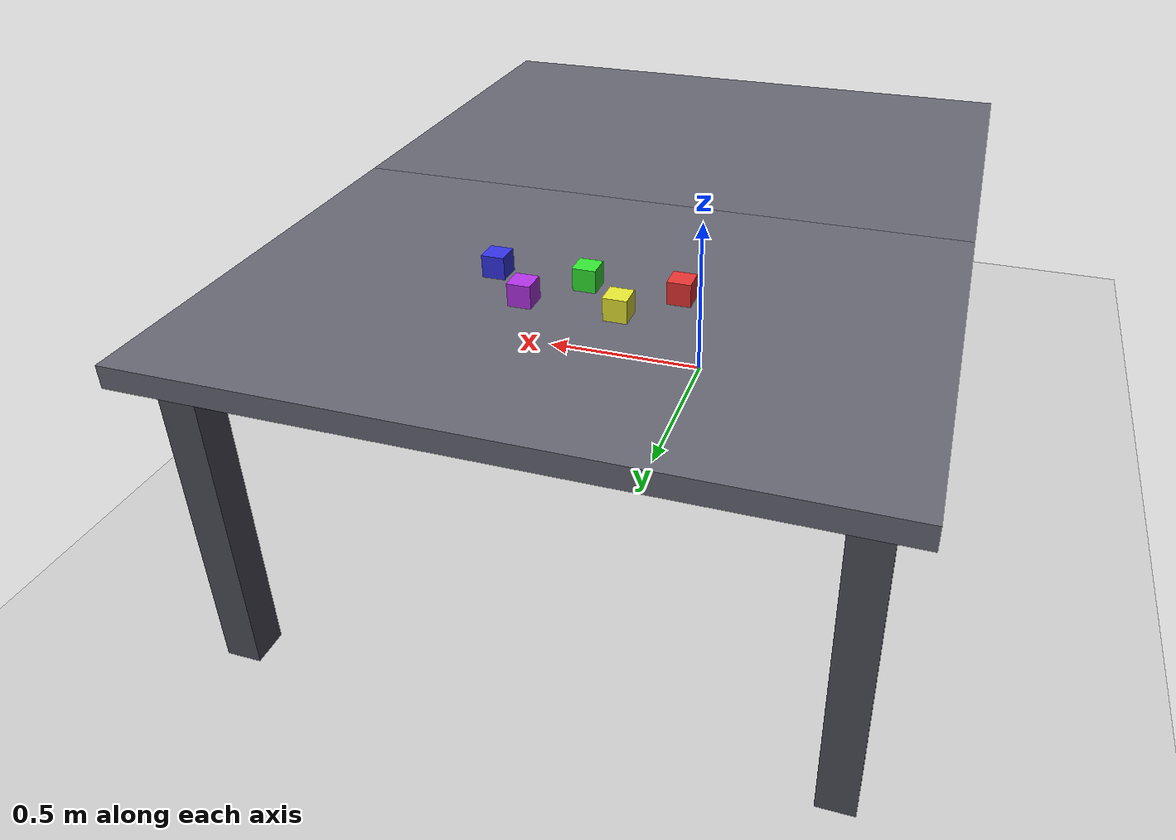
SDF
<?xml version="1.0" ?>
<sdf version="1.9">
  <world name="table_world">
    <physics name="1ms" type="ignored">
      <max_step_size>0.001</max_step_size>
      <real_time_factor>1.0</real_time_factor>
    </physics>

    <plugin filename="gz-sim-physics-system" name="gz::sim::systems::Physics"/>
    <plugin filename="gz-sim-user-commands-system" name="gz::sim::systems::UserCommands"/>
    <plugin filename="gz-sim-scene-broadcaster-system" name="gz::sim::systems::SceneBroadcaster"/>
    <plugin filename="gz-sim-sensors-system" name="gz::sim::systems::Sensors">
      <render_engine>ogre2</render_engine>
    </plugin>
    <plugin filename="gz-sim-contact-system" name="gz::sim::systems::Contact"/>

    <light type="directional" name="sun">
      <cast_shadows>true</cast_shadows>
      <pose>0 0 10 0 0 0</pose>
      <diffuse>0.8 0.8 0.8 1</diffuse>
      <specular>0.2 0.2 0.2 1</specular>
      <attenuation>
        <range>1000</range>
        <constant>0.9</constant>
        <linear>0.01</linear>
        <quadratic>0.001</quadratic>
      </attenuation>
      <direction>-0.5 0.1 -0.9</direction>
    </light>

    <light type="point" name="ambient_light">
      <pose>0 0 5 0 0 0</pose>
      <diffuse>0.5 0.5 0.5 1</diffuse>
      <specular>0.1 0.1 0.1 1</specular>
      <attenuation>
        <range>100</range>
        <constant>0.5</constant>
        <linear>0.01</linear>
        <quadratic>0.001</quadratic>
      </attenuation>
    </light>

    <model name="ground_plane">
      <static>true</static>
      <link name="link">
        <collision name="collision">
          <geometry>
            <plane>
              <normal>0 0 1</normal>
              <size>100 100</size>
            </plane>
          </geometry>
        </collision>
        <visual name="visual">
          <geometry>
            <plane>
              <normal>0 0 1</normal>
              <size>100 100</size>
            </plane>
          </geometry>
          <material>
            <ambient>0.8 0.8 0.8 1</ambient>
            <diffuse>0.8 0.8 0.8 1</diffuse>
            <specular>0.8 0.8 0.8 1</specular>
          </material>
        </visual>
      </link>
    </model>

    <!-- Industrial Metal Table -->
    <model name="industrial_table">
      <static>true</static>
      <pose>0 0 0 0 0 0</pose>

      <!-- Table Top -->
      <link name="table_top">
        <pose>0 0 0.75 0 0 0</pose>
        <collision name="table_top_collision">
          <geometry>
            <box>
              <size>1.5 1.0 0.05</size>
            </box>
          </geometry>
        </collision>
        <visual name="table_top_visual">
          <geometry>
            <box>
              <size>1.5 1.0 0.05</size>
            </box>
          </geometry>
          <material>
            <ambient>0.3 0.3 0.35 1</ambient>
            <diffuse>0.4 0.4 0.45 1</diffuse>
            <specular>0.6 0.6 0.6 1</specular>
            <pbr>
              <metal>
                <metalness>0.8</metalness>
                <roughness>0.3</roughness>
              </metal>
            </pbr>
          </material>
        </visual>
        <inertial>
          <mass>50</mass>
          <inertia>
            <ixx>4.27</ixx>
            <iyy>9.48</iyy>
            <izz>13.54</izz>
            <ixy>0</ixy>
            <ixz>0</ixz>
            <iyz>0</iyz>
          </inertia>
        </inertial>
      </link>

      <!-- Table Leg 1 (Front Left) -->
      <link name="leg_1">
        <pose>-0.65 -0.4 0.3625 0 0 0</pose>
        <collision name="leg_1_collision">
          <geometry>
            <box>
              <size>0.08 0.08 0.725</size>
            </box>
          </geometry>
        </collision>
        <visual name="leg_1_visual">
          <geometry>
            <box>
              <size>0.08 0.08 0.725</size>
            </box>
          </geometry>
          <material>
            <ambient>0.2 0.2 0.25 1</ambient>
            <diffuse>0.3 0.3 0.35 1</diffuse>
            <specular>0.5 0.5 0.5 1</specular>
            <pbr>
              <metal>
                <metalness>0.9</metalness>
                <roughness>0.2</roughness>
              </metal>
            </pbr>
          </material>
        </visual>
      </link>

      <!-- Table Leg 2 (Front Right) -->
      <link name="leg_2">
        <pose>0.65 -0.4 0.3625 0 0 0</pose>
        <collision name="leg_2_collision">
          <geometry>
            <box>
              <size>0.08 0.08 0.725</size>
            </box>
          </geometry>
        </collision>
        <visual name="leg_2_visual">
          <geometry>
            <box>
              <size>0.08 0.08 0.725</size>
            </box>
          </geometry>
          <material>
            <ambient>0.2 0.2 0.25 1</ambient>
            <diffuse>0.3 0.3 0.35 1</diffuse>
            <specular>0.5 0.5 0.5 1</specular>
            <pbr>
              <metal>
                <metalness>0.9</metalness>
                <roughness>0.2</roughness>
              </metal>
            </pbr>
          </material>
        </visual>
      </link>

      <!-- Table Leg 3 (Back Left) -->
      <link name="leg_3">
        <pose>-0.65 0.4 0.3625 0 0 0</pose>
        <collision name="leg_3_collision">
          <geometry>
            <box>
              <size>0.08 0.08 0.725</size>
            </box>
          </geometry>
        </collision>
        <visual name="leg_3_visual">
          <geometry>
            <box>
              <size>0.08 0.08 0.725</size>
            </box>
          </geometry>
          <material>
            <ambient>0.2 0.2 0.25 1</ambient>
            <diffuse>0.3 0.3 0.35 1</diffuse>
            <specular>0.5 0.5 0.5 1</specular>
            <pbr>
              <metal>
                <metalness>0.9</metalness>
                <roughness>0.2</roughness>
              </metal>
            </pbr>
          </material>
        </visual>
      </link>

      <!-- Table Leg 4 (Back Right) -->
      <link name="leg_4">
        <pose>0.65 0.4 0.3625 0 0 0</pose>
        <collision name="leg_4_collision">
          <geometry>
            <box>
              <size>0.08 0.08 0.725</size>
            </box>
          </geometry>
        </collision>
        <visual name="leg_4_visual">
          <geometry>
            <box>
              <size>0.08 0.08 0.725</size>
            </box>
          </geometry>
          <material>
            <ambient>0.2 0.2 0.25 1</ambient>
            <diffuse>0.3 0.3 0.35 1</diffuse>
            <specular>0.5 0.5 0.5 1</specular>
            <pbr>
              <metal>
                <metalness>0.9</metalness>
                <roughness>0.2</roughness>
              </metal>
            </pbr>
          </material>
        </visual>
      </link>

      <!-- Fixed joints to connect legs to table top -->
      <joint name="leg_1_joint" type="fixed">
        <parent>table_top</parent>
        <child>leg_1</child>
      </joint>
      <joint name="leg_2_joint" type="fixed">
        <parent>table_top</parent>
        <child>leg_2</child>
      </joint>
      <joint name="leg_3_joint" type="fixed">
        <parent>table_top</parent>
        <child>leg_3</child>
      </joint>
      <joint name="leg_4_joint" type="fixed">
        <parent>table_top</parent>
        <child>leg_4</child>
      </joint>
    </model>

    <!-- Industrial Metal Table 2 (Side by side) -->
    <model name="industrial_table_2">
      <static>true</static>
      <pose>0 1 0 0 0 0</pose>

      <!-- Table Top -->
      <link name="table_top">
        <pose>0 0 0.75 0 0 0</pose>
        <collision name="table_top_collision">
          <geometry>
            <box>
              <size>1.5 1.0 0.05</size>
            </box>
          </geometry>
        </collision>
        <visual name="table_top_visual">
          <geometry>
            <box>
              <size>1.5 1.0 0.05</size>
            </box>
          </geometry>
          <material>
            <ambient>0.3 0.3 0.35 1</ambient>
            <diffuse>0.4 0.4 0.45 1</diffuse>
            <specular>0.6 0.6 0.6 1</specular>
            <pbr>
              <metal>
                <metalness>0.8</metalness>
                <roughness>0.3</roughness>
              </metal>
            </pbr>
          </material>
        </visual>
        <inertial>
          <mass>50</mass>
          <inertia>
            <ixx>4.27</ixx>
            <iyy>9.48</iyy>
            <izz>13.54</izz>
            <ixy>0</ixy>
            <ixz>0</ixz>
            <iyz>0</iyz>
          </inertia>
        </inertial>
      </link>

      <!-- Table Leg 1 (Front Left) -->
      <link name="leg_1">
        <pose>-0.65 -0.4 0.3625 0 0 0</pose>
        <collision name="leg_1_collision">
          <geometry>
            <box>
              <size>0.08 0.08 0.725</size>
            </box>
          </geometry>
        </collision>
        <visual name="leg_1_visual">
          <geometry>
            <box>
              <size>0.08 0.08 0.725</size>
            </box>
          </geometry>
          <material>
            <ambient>0.2 0.2 0.25 1</ambient>
            <diffuse>0.3 0.3 0.35 1</diffuse>
            <specular>0.5 0.5 0.5 1</specular>
            <pbr>
              <metal>
                <metalness>0.9</metalness>
                <roughness>0.2</roughness>
              </metal>
            </pbr>
          </material>
        </visual>
      </link>

      <!-- Table Leg 2 (Front Right) -->
      <link name="leg_2">
        <pose>0.65 -0.4 0.3625 0 0 0</pose>
        <collision name="leg_2_collision">
          <geometry>
            <box>
              <size>0.08 0.08 0.725</size>
            </box>
          </geometry>
        </collision>
        <visual name="leg_2_visual">
          <geometry>
            <box>
              <size>0.08 0.08 0.725</size>
            </box>
          </geometry>
          <material>
            <ambient>0.2 0.2 0.25 1</ambient>
            <diffuse>0.3 0.3 0.35 1</diffuse>
            <specular>0.5 0.5 0.5 1</specular>
            <pbr>
              <metal>
                <metalness>0.9</metalness>
                <roughness>0.2</roughness>
              </metal>
            </pbr>
          </material>
        </visual>
      </link>

      <!-- Table Leg 3 (Back Left) -->
      <link name="leg_3">
        <pose>-0.65 0.4 0.3625 0 0 0</pose>
        <collision name="leg_3_collision">
          <geometry>
            <box>
              <size>0.08 0.08 0.725</size>
            </box>
          </geometry>
        </collision>
        <visual name="leg_3_visual">
          <geometry>
            <box>
              <size>0.08 0.08 0.725</size>
            </box>
          </geometry>
          <material>
            <ambient>0.2 0.2 0.25 1</ambient>
            <diffuse>0.3 0.3 0.35 1</diffuse>
            <specular>0.5 0.5 0.5 1</specular>
            <pbr>
              <metal>
                <metalness>0.9</metalness>
                <roughness>0.2</roughness>
              </metal>
            </pbr>
          </material>
        </visual>
      </link>

      <!-- Table Leg 4 (Back Right) -->
      <link name="leg_4">
        <pose>0.65 0.4 0.3625 0 0 0</pose>
        <collision name="leg_4_collision">
          <geometry>
            <box>
              <size>0.08 0.08 0.725</size>
            </box>
          </geometry>
        </collision>
        <visual name="leg_4_visual">
          <geometry>
            <box>
              <size>0.08 0.08 0.725</size>
            </box>
          </geometry>
          <material>
            <ambient>0.2 0.2 0.25 1</ambient>
            <diffuse>0.3 0.3 0.35 1</diffuse>
            <specular>0.5 0.5 0.5 1</specular>
            <pbr>
              <metal>
                <metalness>0.9</metalness>
                <roughness>0.2</roughness>
              </metal>
            </pbr>
          </material>
        </visual>
      </link>

      <!-- Fixed joints to connect legs to table top -->
      <joint name="leg_1_joint" type="fixed">
        <parent>table_top</parent>
        <child>leg_1</child>
      </joint>
      <joint name="leg_2_joint" type="fixed">
        <parent>table_top</parent>
        <child>leg_2</child>
      </joint>
      <joint name="leg_3_joint" type="fixed">
        <parent>table_top</parent>
        <child>leg_3</child>
      </joint>
      <joint name="leg_4_joint" type="fixed">
        <parent>table_top</parent>
        <child>leg_4</child>
      </joint>
    </model>

    <!-- Graspable Cubes on Table 2 (near edge for robot reach) -->
    <!-- Cube 1 - Red -->
    <model name="cube_red">
      <pose>-0.2 0.95 0.8 0 0 0</pose>
      <link name="link">
        <inertial>
          <mass>0.1</mass>
          <inertia>
            <ixx>0.0000417</ixx>
            <iyy>0.0000417</iyy>
            <izz>0.0000417</izz>
            <ixy>0</ixy>
            <ixz>0</ixz>
            <iyz>0</iyz>
          </inertia>
        </inertial>
        <collision name="collision">
          <geometry>
            <box>
              <size>0.05 0.05 0.05</size>
            </box>
          </geometry>
          <surface>
            <friction>
              <ode>
                <mu>1.0</mu>
                <mu2>1.0</mu2>
              </ode>
            </friction>
          </surface>
        </collision>
        <visual name="visual">
          <geometry>
            <box>
              <size>0.05 0.05 0.05</size>
            </box>
          </geometry>
          <material>
            <ambient>0.8 0.1 0.1 1</ambient>
            <diffuse>0.9 0.2 0.2 1</diffuse>
            <specular>0.5 0.5 0.5 1</specular>
          </material>
        </visual>
      </link>
    </model>

    <!-- Cube 2 - Green -->
    <model name="cube_green">
      <pose>0.0 0.95 0.8 0 0 0</pose>
      <link name="link">
        <inertial>
          <mass>0.1</mass>
          <inertia>
            <ixx>0.0000417</ixx>
            <iyy>0.0000417</iyy>
            <izz>0.0000417</izz>
            <ixy>0</ixy>
            <ixz>0</ixz>
            <iyz>0</iyz>
          </inertia>
        </inertial>
        <collision name="collision">
          <geometry>
            <box>
              <size>0.05 0.05 0.05</size>
            </box>
          </geometry>
          <surface>
            <friction>
              <ode>
                <mu>1.0</mu>
                <mu2>1.0</mu2>
              </ode>
            </friction>
          </surface>
        </collision>
        <visual name="visual">
          <geometry>
            <box>
              <size>0.05 0.05 0.05</size>
            </box>
          </geometry>
          <material>
            <ambient>0.1 0.8 0.1 1</ambient>
            <diffuse>0.2 0.9 0.2 1</diffuse>
            <specular>0.5 0.5 0.5 1</specular>
          </material>
        </visual>
      </link>
    </model>

    <!-- Cube 3 - Blue -->
    <model name="cube_blue">
      <pose>0.2 0.95 0.8 0 0 0</pose>
      <link name="link">
        <inertial>
          <mass>0.1</mass>
          <inertia>
            <ixx>0.0000417</ixx>
            <iyy>0.0000417</iyy>
            <izz>0.0000417</izz>
            <ixy>0</ixy>
            <ixz>0</ixz>
            <iyz>0</iyz>
          </inertia>
        </inertial>
        <collision name="collision">
          <geometry>
            <box>
              <size>0.05 0.05 0.05</size>
            </box>
          </geometry>
          <surface>
            <friction>
              <ode>
                <mu>1.0</mu>
                <mu2>1.0</mu2>
              </ode>
            </friction>
          </surface>
        </collision>
        <visual name="visual">
          <geometry>
            <box>
              <size>0.05 0.05 0.05</size>
            </box>
          </geometry>
          <material>
            <ambient>0.1 0.1 0.8 1</ambient>
            <diffuse>0.2 0.2 0.9 1</diffuse>
            <specular>0.5 0.5 0.5 1</specular>
          </material>
        </visual>
      </link>
    </model>

    <!-- Cube 4 - Yellow -->
    <model name="cube_yellow">
      <pose>-0.1 1.05 0.8 0 0 0</pose>
      <link name="link">
        <inertial>
          <mass>0.1</mass>
          <inertia>
            <ixx>0.0000417</ixx>
            <iyy>0.0000417</iyy>
            <izz>0.0000417</izz>
            <ixy>0</ixy>
            <ixz>0</ixz>
            <iyz>0</iyz>
          </inertia>
        </inertial>
        <collision name="collision">
          <geometry>
            <box>
              <size>0.05 0.05 0.05</size>
            </box>
          </geometry>
          <surface>
            <friction>
              <ode>
                <mu>1.0</mu>
                <mu2>1.0</mu2>
              </ode>
            </friction>
          </surface>
        </collision>
        <visual name="visual">
          <geometry>
            <box>
              <size>0.05 0.05 0.05</size>
            </box>
          </geometry>
          <material>
            <ambient>0.8 0.8 0.1 1</ambient>
            <diffuse>0.9 0.9 0.2 1</diffuse>
            <specular>0.5 0.5 0.5 1</specular>
          </material>
        </visual>
      </link>
    </model>

    <!-- Cube 5 - Purple -->
    <model name="cube_purple">
      <pose>0.1 1.05 0.8 0 0 0</pose>
      <link name="link">
        <inertial>
          <mass>0.1</mass>
          <inertia>
            <ixx>0.0000417</ixx>
            <iyy>0.0000417</iyy>
            <izz>0.0000417</izz>
            <ixy>0</ixy>
            <ixz>0</ixz>
            <iyz>0</iyz>
          </inertia>
        </inertial>
        <collision name="collision">
          <geometry>
            <box>
              <size>0.05 0.05 0.05</size>
            </box>
          </geometry>
          <surface>
            <friction>
              <ode>
                <mu>1.0</mu>
                <mu2>1.0</mu2>
              </ode>
            </friction>
          </surface>
        </collision>
        <visual name="visual">
          <geometry>
            <box>
              <size>0.05 0.05 0.05</size>
            </box>
          </geometry>
          <material>
            <ambient>0.6 0.1 0.8 1</ambient>
            <diffuse>0.7 0.2 0.9 1</diffuse>
            <specular>0.5 0.5 0.5 1</specular>
          </material>
        </visual>
      </link>
    </model>

  </world>
</sdf>
